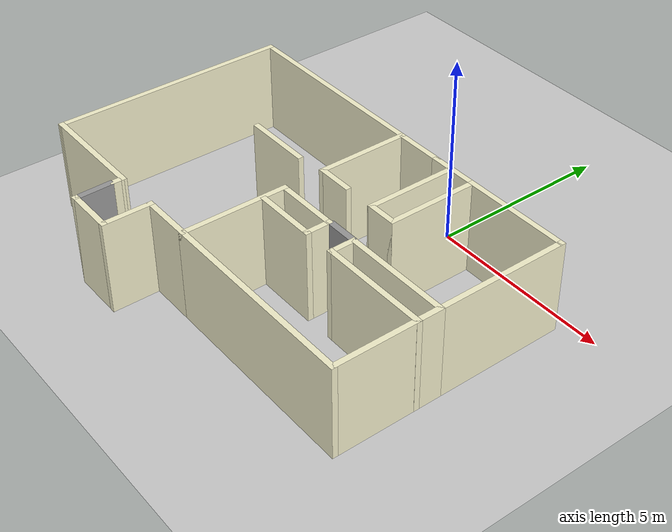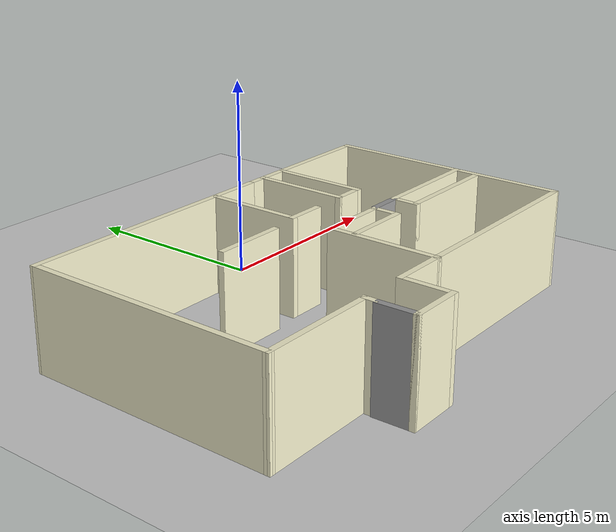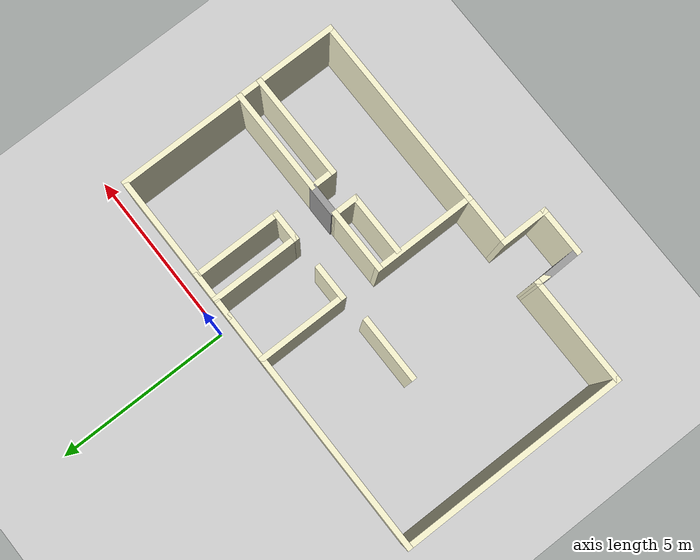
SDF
<sdf version="1.6">
 <world name="default">
  <light name="sun" type="directional">
   <pose>0 0 10 0 -0 0</pose>
   <diffuse>0.8 0.8 0.8 1</diffuse>
   <specular>0.1 0.1 0.1 1</specular>
   <attenuation>
    <range>1000</range>
    <constant>0.9</constant>
    <linear>0.01</linear>
    <quadratic>0.001</quadratic>
   </attenuation>
   <direction>-0.5 0.5 -1</direction>
  </light>
  <model name="ground_plane">
   <static>1</static>
   <link name="link">
    <collision name="collision">
     <geometry><plane><normal>0 0 1</normal><size>100 100</size></plane></geometry>
     <surface><friction><ode><mu>100</mu><mu2>50</mu2></ode></friction></surface>
    </collision>
    <visual name="visual">
     <cast_shadows>0</cast_shadows>
     <geometry><plane><normal>0 0 1</normal><size>100 100</size></plane></geometry>
     <material>
      <script><uri>file://media/materials/scripts/gazebo.material</uri><name>Gazebo/Grey</name></script>
     </material>
    </visual>
   </link>
  </model>
  <gravity>0 0 -9.8</gravity>
  <magnetic_field>6e-06 2.3e-05 -4.2e-05</magnetic_field>
  <atmosphere type="adiabatic"/>
  <physics name="default_physics" default="0" type="ode">
   <max_step_size>0.001</max_step_size>
   <real_time_factor>1</real_time_factor>
   <real_time_update_rate>1000</real_time_update_rate>
  </physics>
  <scene><ambient>0.4 0.4 0.4 1</ambient><background>0.7 0.7 0.7 1</background><shadows>1</shadows></scene>
  <spherical_coordinates>
   <surface_model>EARTH_WGS84</surface_model>
   <latitude_deg>0</latitude_deg>
   <longitude_deg>0</longitude_deg>
   <elevation>0</elevation>
   <heading_deg>0</heading_deg>
  </spherical_coordinates>
  <model name="house">
   <pose>-1.43125 -3.92505 0 0 -0 0</pose>
   <link name="Door_0">
    <collision name="Door_0_Collision">
     <geometry><box><size>0.9 0.17 2.5</size></box></geometry>
     <pose>0 0 1.25 0 -0 0</pose>
    </collision>
    <visual name="Door_0_Visual">
     <pose>0 0 1.25 0 -0 0</pose>
     <geometry><box><size>0.9 0.17 2.5</size></box></geometry>
     <material>
      <script><uri>file://media/materials/scripts/gazebo.material</uri><name>Gazebo/Grey</name></script>
     </material>
    </visual>
    <pose>-2.53496 -3.43764 0 0 -0 1.59446</pose>
   </link>
   <link name="Door_1">
    <collision name="Door_1_Collision">
     <geometry><box><size>0.85 0.17 2.5</size></box></geometry>
     <pose>0 0 1.25 0 -0 0</pose>
    </collision>
    <visual name="Door_1_Visual">
     <pose>0 0 1.25 0 -0 0</pose>
     <geometry><box><size>0.85 0.17 2.5</size></box></geometry>
     <material>
      <script><uri>file://media/materials/scripts/gazebo.material</uri><name>Gazebo/Grey</name></script>
     </material>
    </visual>
    <pose>2.18886 0.032322 0 0 -0 0</pose>
   </link>
   <link name="Wall_10">
    <collision name="Wall_10_Collision">
     <geometry><box><size>3.063 0.15 2.5</size></box></geometry>
     <pose>0 0 1.25 0 -0 0</pose>
    </collision>
    <visual name="Wall_10_Visual">
     <pose>0 0 1.25 0 -0 0</pose>
     <geometry><box><size>3.063 0.15 2.5</size></box></geometry>
     <material>
      <script><uri>file://media/materials/scripts/gazebo.material</uri><name>Gazebo/Grey</name></script>
      <ambient>0.956863 0.941176 0.8 1</ambient>
     </material>
     <meta><layer>0</layer></meta>
    </visual>
    <pose>-3.99041 -2.74041 0 0 -0 3.14159</pose>
   </link>
   <link name="Wall_12">
    <collision name="Wall_12_Collision">
     <geometry><box><size>6.4 0.15 2.5</size></box></geometry>
     <pose>0 0 1.25 0 -0 0</pose>
    </collision>
    <visual name="Wall_12_Visual">
     <pose>0 0 1.25 0 -0 0</pose>
     <geometry><box><size>6.4 0.15 2.5</size></box></geometry>
     <material>
      <script><uri>file://media/materials/scripts/gazebo.material</uri><name>Gazebo/Grey</name></script>
      <ambient>0.956863 0.941176 0.8 1</ambient>
     </material>
     <meta><layer>0</layer></meta>
    </visual>
    <pose>-5.43941 0.384587 0 0 -0 1.5684</pose>
   </link>
   <link name="Wall_14">
    <collision name="Wall_14_Collision">
     <geometry><box><size>5.649 0.15 2.5</size></box></geometry>
     <pose>0 0 1.25 0 -0 0</pose>
    </collision>
    <visual name="Wall_14_Visual">
     <pose>0 0 1.25 0 -0 0</pose>
     <geometry><box><size>5.649 0.15 2.5</size></box></geometry>
     <material>
      <script><uri>file://media/materials/scripts/gazebo.material</uri><name>Gazebo/Grey</name></script>
      <ambient>0.956863 0.941176 0.8 1</ambient>
     </material>
     <meta><layer>0</layer></meta>
    </visual>
    <pose>-2.68241 3.50959 0 0 -0 0</pose>
   </link>
   <link name="Wall_18">
    <collision name="Wall_18_Collision">
     <geometry><box><size>2.53945 0.15 2.5</size></box></geometry>
     <pose>0 0 1.25 0 -0 0</pose>
    </collision>
    <visual name="Wall_18_Visual">
     <pose>0 0 1.25 0 -0 0</pose>
     <geometry><box><size>2.53945 0.15 2.5</size></box></geometry>
     <material>
      <script><uri>file://media/materials/scripts/gazebo.material</uri><name>Gazebo/Grey</name></script>
      <ambient>0.956863 0.941176 0.8 1</ambient>
     </material>
     <meta><layer>0</layer></meta>
    </visual>
    <pose>0.06709 2.31509 0 0 -0 -1.5708</pose>
   </link>
   <link name="Wall_2">
    <collision name="Wall_2_Collision">
     <geometry><box><size>1.397 0.15 2.5</size></box></geometry>
     <pose>0 0 1.25 0 -0 0</pose>
    </collision>
    <visual name="Wall_2_Visual">
     <pose>0 0 1.25 0 -0 0</pose>
     <geometry><box><size>1.397 0.15 2.5</size></box></geometry>
     <material>
      <script><uri>file://media/materials/scripts/gazebo.material</uri><name>Gazebo/Grey</name></script>
      <ambient>0.956863 0.941176 0.8 1</ambient>
     </material>
     <meta><layer>0</layer></meta>
    </visual>
    <pose>-1.91041 -3.96241 0 0 -0 0</pose>
   </link>
   <link name="Wall_22">
    <collision name="Wall_22_Collision">
     <geometry><box><size>2.896 0.15 2.5</size></box></geometry>
     <pose>0 0 1.25 0 -0 0</pose>
    </collision>
    <visual name="Wall_22_Visual">
     <pose>0 0 1.25 0 -0 0</pose>
     <geometry><box><size>2.896 0.15 2.5</size></box></geometry>
     <material>
      <script><uri>file://media/materials/scripts/gazebo.material</uri><name>Gazebo/Grey</name></script>
      <ambient>0.956863 0.941176 0.8 1</ambient>
     </material>
     <meta><layer>0</layer></meta>
    </visual>
    <pose>0.06709 -1.36741 0 0 -0 1.5708</pose>
   </link>
   <link name="Wall_24">
    <collision name="Wall_24_Collision">
     <geometry><box><size>1.86 0.15 2.5</size></box></geometry>
     <pose>0 0 1.25 0 -0 0</pose>
    </collision>
    <visual name="Wall_24_Visual">
     <pose>0 0 1.25 0 -0 0</pose>
     <geometry><box><size>1.86 0.15 2.5</size></box></geometry>
     <material>
      <script><uri>file://media/materials/scripts/gazebo.material</uri><name>Gazebo/Grey</name></script>
      <ambient>0.956863 0.941176 0.8 1</ambient>
     </material>
     <meta><layer>0</layer></meta>
    </visual>
    <pose>-1.58791 1.00459 0 0 -0 3.14159</pose>
   </link>
   <link name="Wall_26">
    <collision name="Wall_26_Collision">
     <geometry><box><size>1.43 0.15 2.5</size></box></geometry>
     <pose>0 0 1.25 0 -0 0</pose>
    </collision>
    <visual name="Wall_26_Visual">
     <pose>0 0 1.25 0 -0 0</pose>
     <geometry><box><size>1.43 0.15 2.5</size></box></geometry>
     <material>
      <script><uri>file://media/materials/scripts/gazebo.material</uri><name>Gazebo/Grey</name></script>
      <ambient>0.956863 0.941176 0.8 1</ambient>
     </material>
     <meta><layer>0</layer></meta>
    </visual>
    <pose>0.70709 3.50959 0 0 -0 0</pose>
   </link>
   <link name="Wall_29">
    <collision name="Wall_29_Collision">
     <geometry><box><size>1.828 0.15 2.5</size></box></geometry>
     <pose>0 0 1.25 0 -0 0</pose>
    </collision>
    <visual name="Wall_29_Visual">
     <pose>0 0 1.25 0 -0 0</pose>
     <geometry><box><size>1.828 0.15 2.5</size></box></geometry>
     <material>
      <script><uri>file://media/materials/scripts/gazebo.material</uri><name>Gazebo/Grey</name></script>
      <ambient>0.956863 0.941176 0.8 1</ambient>
     </material>
     <meta><layer>0</layer></meta>
    </visual>
    <pose>0.90609 0.005587 0 0 -0 0</pose>
   </link>
   <link name="Wall_39">
    <collision name="Wall_39_Collision">
     <geometry><box><size>2.997 0.15 2.5</size></box></geometry>
     <pose>0 0 1.25 0 -0 0</pose>
    </collision>
    <visual name="Wall_39_Visual">
     <pose>0 0 1.25 0 -0 0</pose>
     <geometry><box><size>2.997 0.15 2.5</size></box></geometry>
     <material>
      <script><uri>file://media/materials/scripts/gazebo.material</uri><name>Gazebo/Grey</name></script>
      <ambient>0.956863 0.941176 0.8 1</ambient>
     </material>
     <meta><layer>0</layer></meta>
    </visual>
    <pose>4.02059 0.034587 0 0 -0 3.14159</pose>
   </link>
   <link name="Wall_4">
    <collision name="Wall_4_Collision">
     <geometry><box><size>1.37235 0.15 2.5</size></box></geometry>
     <pose>0 0 1.25 0 -0 0</pose>
    </collision>
    <visual name="Wall_4_Visual">
     <pose>0 0 1.25 0 -0 0</pose>
     <geometry><box><size>1.37235 0.15 2.5</size></box></geometry>
     <material>
      <script><uri>file://media/materials/scripts/gazebo.material</uri><name>Gazebo/Grey</name></script>
      <ambient>0.956863 0.941176 0.8 1</ambient>
     </material>
     <meta><layer>0</layer></meta>
    </visual>
    <pose>-1.28691 -3.35141 0 0 -0 1.5708</pose>
   </link>
   <link name="Wall_6">
    <collision name="Wall_6_Collision">
     <geometry><box><size>1.504 0.15 2.5</size></box></geometry>
     <pose>0 0 1.25 0 -0 0</pose>
    </collision>
    <visual name="Wall_6_Visual">
     <pose>0 0 1.25 0 -0 0</pose>
     <geometry><box><size>1.504 0.15 2.5</size></box></geometry>
     <material>
      <script><uri>file://media/materials/scripts/gazebo.material</uri><name>Gazebo/Grey</name></script>
      <ambient>0.956863 0.941176 0.8 1</ambient>
     </material>
     <meta><layer>0</layer></meta>
    </visual>
    <pose>-0.60991 -2.74041 0 0 -0 0</pose>
   </link>
   <link name="Wall_64">
    <collision name="Wall_64_Collision">
     <geometry><box><size>1.041 0.15 2.5</size></box></geometry>
     <pose>0 0 1.25 0 -0 0</pose>
    </collision>
    <visual name="Wall_64_Visual">
     <pose>0 0 1.25 0 -0 0</pose>
     <geometry><box><size>1.041 0.15 2.5</size></box></geometry>
     <material>
      <script><uri>file://media/materials/scripts/gazebo.material</uri><name>Gazebo/Grey</name></script>
      <ambient>0.956863 0.941176 0.8 1</ambient>
     </material>
     <meta><layer>0</layer></meta>
    </visual>
    <pose>0.51259 1.12059 0 0 -0 0</pose>
   </link>
   <link name="Wall_66">
    <collision name="Wall_66_Collision">
     <geometry><box><size>0.88 0.15 2.5</size></box></geometry>
     <pose>0 0 1.25 0 -0 0</pose>
    </collision>
    <visual name="Wall_66_Visual">
     <pose>0 0 1.25 0 -0 0</pose>
     <geometry><box><size>0.88 0.15 2.5</size></box></geometry>
     <material>
      <script><uri>file://media/materials/scripts/gazebo.material</uri><name>Gazebo/Grey</name></script>
      <ambient>0.956863 0.941176 0.8 1</ambient>
     </material>
     <meta><layer>0</layer></meta>
    </visual>
    <pose>2.23209 1.12859 0 0 -0 0</pose>
   </link>
   <link name="Wall_68">
    <collision name="Wall_68_Collision">
     <geometry><box><size>2.531 0.15 2.5</size></box></geometry>
     <pose>0 0 1.25 0 -0 0</pose>
    </collision>
    <visual name="Wall_68_Visual">
     <pose>0 0 1.25 0 -0 0</pose>
     <geometry><box><size>2.531 0.15 2.5</size></box></geometry>
     <material>
      <script><uri>file://media/materials/scripts/gazebo.material</uri><name>Gazebo/Grey</name></script>
      <ambient>0.956863 0.941176 0.8 1</ambient>
     </material>
     <meta><layer>0</layer></meta>
    </visual>
    <pose>1.86709 2.31909 0 0 -0 1.5708</pose>
   </link>
   <link name="Wall_70">
    <collision name="Wall_70_Collision">
     <geometry><box><size>0.67 0.15 2.5</size></box></geometry>
     <pose>0 0 1.25 0 -0 0</pose>
    </collision>
    <visual name="Wall_70_Visual">
     <pose>0 0 1.25 0 -0 0</pose>
     <geometry><box><size>0.67 0.15 2.5</size></box></geometry>
     <material>
      <script><uri>file://media/materials/scripts/gazebo.material</uri><name>Gazebo/Grey</name></script>
      <ambient>0.956863 0.941176 0.8 1</ambient>
     </material>
     <meta><layer>0</layer></meta>
    </visual>
    <pose>1.60709 3.50959 0 0 -0 0</pose>
   </link>
   <link name="Wall_72">
    <collision name="Wall_72_Collision">
     <geometry><box><size>2.531 0.15 2.5</size></box></geometry>
     <pose>0 0 1.25 0 -0 0</pose>
    </collision>
    <visual name="Wall_72_Visual">
     <pose>0 0 1.25 0 -0 0</pose>
     <geometry><box><size>2.531 0.15 2.5</size></box></geometry>
     <material>
      <script><uri>file://media/materials/scripts/gazebo.material</uri><name>Gazebo/Grey</name></script>
      <ambient>0.956863 0.941176 0.8 1</ambient>
     </material>
     <meta><layer>0</layer></meta>
    </visual>
    <pose>2.59709 2.31909 0 0 -0 1.5708</pose>
   </link>
   <link name="Wall_75">
    <collision name="Wall_75_Collision">
     <geometry><box><size>2.997 0.15 2.5</size></box></geometry>
     <pose>0 0 1.25 0 -0 0</pose>
    </collision>
    <visual name="Wall_75_Visual">
     <pose>0 0 1.25 0 -0 0</pose>
     <geometry><box><size>2.997 0.15 2.5</size></box></geometry>
     <material>
      <script><uri>file://media/materials/scripts/gazebo.material</uri><name>Gazebo/Grey</name></script>
      <ambient>0.956863 0.941176 0.8 1</ambient>
     </material>
     <meta><layer>0</layer></meta>
    </visual>
    <pose>4.02059 3.50959 0 0 -0 0</pose>
   </link>
   <link name="Wall_77">
    <collision name="Wall_77_Collision">
     <geometry><box><size>3.625 0.15 2.5</size></box></geometry>
     <pose>0 0 1.25 0 -0 0</pose>
    </collision>
    <visual name="Wall_77_Visual">
     <pose>0 0 1.25 0 -0 0</pose>
     <geometry><box><size>3.625 0.15 2.5</size></box></geometry>
     <material>
      <script><uri>file://media/materials/scripts/gazebo.material</uri><name>Gazebo/Grey</name></script>
      <ambient>0.956863 0.941176 0.8 1</ambient>
     </material>
     <meta><layer>0</layer></meta>
    </visual>
    <pose>5.44409 1.77209 0 0 -0 -1.5708</pose>
   </link>
   <link name="Wall_79">
    <collision name="Wall_79_Collision">
     <geometry><box><size>2.925 0.15 2.5</size></box></geometry>
     <pose>0 0 1.25 0 -0 0</pose>
    </collision>
    <visual name="Wall_79_Visual">
     <pose>0 0 1.25 0 -0 0</pose>
     <geometry><box><size>2.925 0.15 2.5</size></box></geometry>
     <material>
      <script><uri>file://media/materials/scripts/gazebo.material</uri><name>Gazebo/Grey</name></script>
      <ambient>0.956863 0.941176 0.8 1</ambient>
     </material>
     <meta><layer>0</layer></meta>
    </visual>
    <pose>5.44409 -1.35291 0 0 -0 -1.5708</pose>
   </link>
   <link name="Wall_81">
    <collision name="Wall_81_Collision">
     <geometry><box><size>5.527 0.15 2.5</size></box></geometry>
     <pose>0 0 1.25 0 -0 0</pose>
    </collision>
    <visual name="Wall_81_Visual">
     <pose>0 0 1.25 0 -0 0</pose>
     <geometry><box><size>5.527 0.15 2.5</size></box></geometry>
     <material>
      <script><uri>file://media/materials/scripts/gazebo.material</uri><name>Gazebo/Grey</name></script>
      <ambient>0.956863 0.941176 0.8 1</ambient>
     </material>
     <meta><layer>0</layer></meta>
    </visual>
    <pose>2.75559 -2.74041 0 0 -0 0</pose>
   </link>
   <link name="Wall_83">
    <collision name="Wall_83_Collision">
     <geometry><box><size>0.88 0.15 2.5</size></box></geometry>
     <pose>0 0 1.25 0 -0 0</pose>
    </collision>
    <visual name="Wall_83_Visual">
     <pose>0 0 1.25 0 -0 0</pose>
     <geometry><box><size>0.88 0.15 2.5</size></box></geometry>
     <material>
      <script><uri>file://media/materials/scripts/gazebo.material</uri><name>Gazebo/Grey</name></script>
      <ambient>0.956863 0.941176 0.8 1</ambient>
     </material>
     <meta><layer>0</layer></meta>
    </visual>
    <pose>2.23209 3.50959 0 0 -0 0</pose>
   </link>
   <link name="Wall_85">
    <collision name="Wall_85_Collision">
     <geometry><box><size>0.762 0.15 2.5</size></box></geometry>
     <pose>0 0 1.25 0 -0 0</pose>
    </collision>
    <visual name="Wall_85_Visual">
     <pose>0 0 1.25 0 -0 0</pose>
     <geometry><box><size>0.762 0.15 2.5</size></box></geometry>
     <material>
      <script><uri>file://media/materials/scripts/gazebo.material</uri><name>Gazebo/Grey</name></script>
      <ambient>0.956863 0.941176 0.8 1</ambient>
     </material>
     <meta><layer>0</layer></meta>
    </visual>
    <pose>1.74509 -0.300413 0 0 -0 -1.5708</pose>
   </link>
   <link name="Wall_87">
    <collision name="Wall_87_Collision">
     <geometry><box><size>1.75 0.15 2.5</size></box></geometry>
     <pose>0 0 1.25 0 -0 0</pose>
    </collision>
    <visual name="Wall_87_Visual">
     <pose>0 0 1.25 0 -0 0</pose>
     <geometry><box><size>1.75 0.15 2.5</size></box></geometry>
     <material>
      <script><uri>file://media/materials/scripts/gazebo.material</uri><name>Gazebo/Grey</name></script>
      <ambient>0.956863 0.941176 0.8 1</ambient>
     </material>
     <meta><layer>0</layer></meta>
    </visual>
    <pose>0.94509 -0.606413 0 0 -0 3.14159</pose>
   </link>
   <link name="Wall_89">
    <collision name="Wall_89_Collision">
     <geometry><box><size>0.762 0.15 2.5</size></box></geometry>
     <pose>0 0 1.25 0 -0 0</pose>
    </collision>
    <visual name="Wall_89_Visual">
     <pose>0 0 1.25 0 -0 0</pose>
     <geometry><box><size>0.762 0.15 2.5</size></box></geometry>
     <material>
      <script><uri>file://media/materials/scripts/gazebo.material</uri><name>Gazebo/Grey</name></script>
      <ambient>0.956863 0.941176 0.8 1</ambient>
     </material>
     <meta><layer>0</layer></meta>
    </visual>
    <pose>2.59709 -0.271413 0 0 -0 -1.5708</pose>
   </link>
   <link name="Wall_91">
    <collision name="Wall_91_Collision">
     <geometry><box><size>3 0.15 2.5</size></box></geometry>
     <pose>0 0 1.25 0 -0 0</pose>
    </collision>
    <visual name="Wall_91_Visual">
     <pose>0 0 1.25 0 -0 0</pose>
     <geometry><box><size>3 0.15 2.5</size></box></geometry>
     <material>
      <script><uri>file://media/materials/scripts/gazebo.material</uri><name>Gazebo/Grey</name></script>
      <ambient>0.956863 0.941176 0.8 1</ambient>
     </material>
     <meta><layer>0</layer></meta>
    </visual>
    <pose>4.02209 -0.577413 0 0 -0 0</pose>
   </link>
   <link name="Wall_93">
    <collision name="Wall_93_Collision">
     <geometry><box><size>0.16 0.15 2.5</size></box></geometry>
     <pose>0 0 1.25 0 -0 0</pose>
    </collision>
    <visual name="Wall_93_Visual">
     <pose>0 0 1.25 0 -0 0</pose>
     <geometry><box><size>0.16 0.15 2.5</size></box></geometry>
     <material>
      <script><uri>file://media/materials/scripts/gazebo.material</uri><name>Gazebo/Grey</name></script>
      <ambient>0.956863 0.941176 0.8 1</ambient>
     </material>
     <meta><layer>0</layer></meta>
    </visual>
    <pose>-2.53391 -3.95741 0 0 -0 1.5708</pose>
   </link>
   <link name="Wall_95">
    <collision name="Wall_95_Collision">
     <geometry><box><size>0.409839 0.15 2.5</size></box></geometry>
     <pose>0 0 1.25 0 -0 0</pose>
    </collision>
    <visual name="Wall_95_Visual">
     <pose>0 0 1.25 0 -0 0</pose>
     <geometry><box><size>0.409839 0.15 2.5</size></box></geometry>
     <material>
      <script><uri>file://media/materials/scripts/gazebo.material</uri><name>Gazebo/Grey</name></script>
      <ambient>0.956863 0.941176 0.8 1</ambient>
     </material>
     <meta><layer>0</layer></meta>
    </visual>
    <pose>-2.53444 -2.87033 0 0 -0 1.56675</pose>
   </link>
   <static>1</static>
  </model>
  <plugin filename="libcollision_map_creator.so" name="collision_map_creator"/>
 </world>
</sdf>
